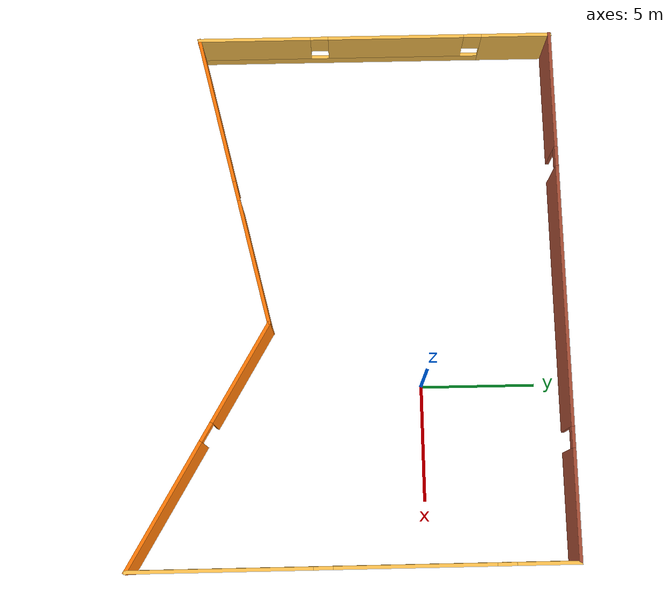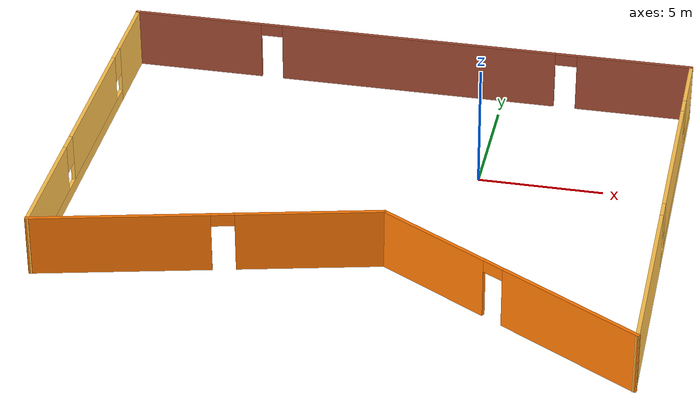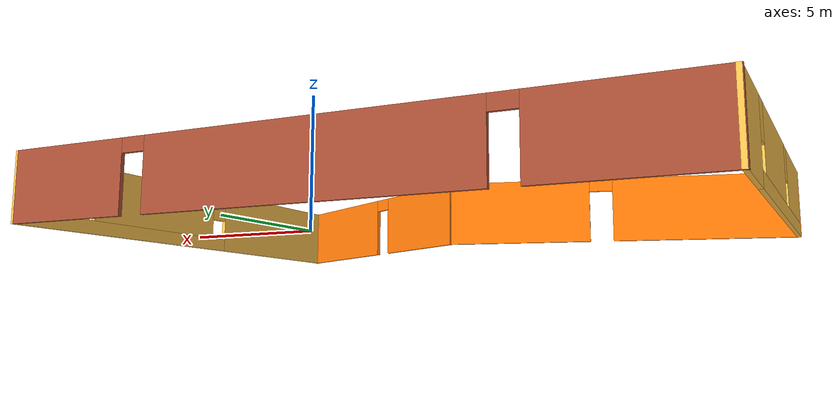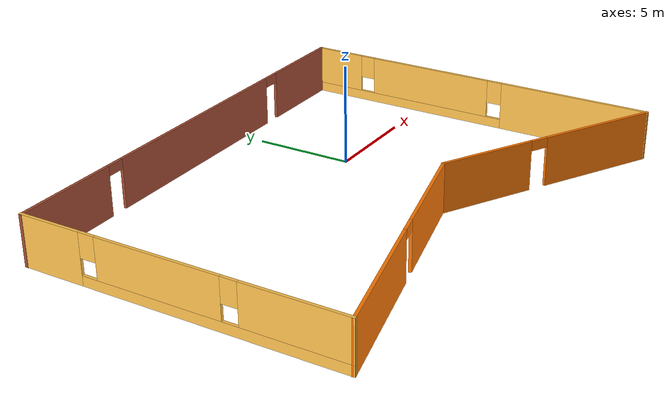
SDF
<?xml version='1.0'?>
<sdf version='1.6'>
  <model name='area98'>
    <pose frame=''>-3.93153 -3.16801 0 0 -0 0</pose>
    <link name='Wall_10'>
      <pose frame=''>11.6613 0.003272 0 0 -0 1.57265</pose>
      <visual name='Wall_10_Visual_0'>
        <pose frame=''>-5.5195 0 1.25 0 -0 0</pose>
        <geometry>
          <box>
            <size>7.78929 0.15 2.5</size>
          </box>
        </geometry>
        <material>
          <script>
            <uri>file://media/materials/scripts/gazebo.material</uri>
            <name>Gazebo/Grey</name>
          </script>
          <ambient>1 0.764706 0.305882 1</ambient>
        </material>
        <meta>
          <layer>0</layer>
        </meta>
      </visual>
      <collision name='Wall_10_Collision_0'>
        <geometry>
          <box>
            <size>7.78929 0.15 2.5</size>
          </box>
        </geometry>
        <pose frame=''>-5.5195 0 1.25 0 -0 0</pose>
      </collision>
      <visual name='Wall_10_Visual_1'>
        <pose frame=''>3.89465 0 0.25 0 -0 0</pose>
        <geometry>
          <box>
            <size>11.039 0.15 0.5</size>
          </box>
        </geometry>
        <material>
          <script>
            <uri>file://media/materials/scripts/gazebo.material</uri>
            <name>Gazebo/Grey</name>
          </script>
          <ambient>1 0.764706 0.305882 1</ambient>
        </material>
        <meta>
          <layer>0</layer>
        </meta>
      </visual>
      <collision name='Wall_10_Collision_1'>
        <geometry>
          <box>
            <size>11.039 0.15 0.5</size>
          </box>
        </geometry>
        <pose frame=''>3.89465 0 0.25 0 -0 0</pose>
      </collision>
      <visual name='Wall_10_Visual_2'>
        <pose frame=''>2.54713 0 1.5 0 -0 0</pose>
        <geometry>
          <box>
            <size>6.74398 0.15 2</size>
          </box>
        </geometry>
        <material>
          <script>
            <uri>file://media/materials/scripts/gazebo.material</uri>
            <name>Gazebo/Grey</name>
          </script>
          <ambient>1 0.764706 0.305882 1</ambient>
        </material>
        <meta>
          <layer>0</layer>
        </meta>
      </visual>
      <collision name='Wall_10_Collision_2'>
        <geometry>
          <box>
            <size>6.74398 0.15 2</size>
          </box>
        </geometry>
        <pose frame=''>2.54713 0 1.5 0 -0 0</pose>
      </collision>
      <visual name='Wall_10_Visual_3'>
        <pose frame=''>8.06663 0 1.5 0 -0 0</pose>
        <geometry>
          <box>
            <size>2.69503 0.15 2</size>
          </box>
        </geometry>
        <material>
          <script>
            <uri>file://media/materials/scripts/gazebo.material</uri>
            <name>Gazebo/Grey</name>
          </script>
          <ambient>1 0.764706 0.305882 1</ambient>
        </material>
        <meta>
          <layer>0</layer>
        </meta>
      </visual>
      <collision name='Wall_10_Collision_3'>
        <geometry>
          <box>
            <size>2.69503 0.15 2</size>
          </box>
        </geometry>
        <pose frame=''>8.06663 0 1.5 0 -0 0</pose>
      </collision>
      <visual name='Wall_10_Visual_4'>
        <pose frame=''>-1.22486 0 1.9 0 -0 0</pose>
        <geometry>
          <box>
            <size>0.8 0.15 1.2</size>
          </box>
        </geometry>
        <material>
          <script>
            <uri>file://media/materials/scripts/gazebo.material</uri>
            <name>Gazebo/Grey</name>
          </script>
          <ambient>1 0.764706 0.305882 1</ambient>
        </material>
        <meta>
          <layer>0</layer>
        </meta>
      </visual>
      <collision name='Wall_10_Collision_4'>
        <geometry>
          <box>
            <size>0.8 0.15 1.2</size>
          </box>
        </geometry>
        <pose frame=''>-1.22486 0 1.9 0 -0 0</pose>
      </collision>
      <visual name='Wall_10_Visual_5'>
        <pose frame=''>6.31912 0 1.9 0 -0 0</pose>
        <geometry>
          <box>
            <size>0.8 0.15 1.2</size>
          </box>
        </geometry>
        <material>
          <script>
            <uri>file://media/materials/scripts/gazebo.material</uri>
            <name>Gazebo/Grey</name>
          </script>
          <ambient>1 0.764706 0.305882 1</ambient>
        </material>
        <meta>
          <layer>0</layer>
        </meta>
      </visual>
      <collision name='Wall_10_Collision_5'>
        <geometry>
          <box>
            <size>0.8 0.15 1.2</size>
          </box>
        </geometry>
        <pose frame=''>6.31912 0 1.9 0 -0 0</pose>
      </collision>
    </link>
    <link name='Wall_11'>
      <pose frame=''>-0.031073 9.34241 0 0 -0 3.14159</pose>
      <visual name='Wall_11_Visual_0'>
        <pose frame=''>-9.37286 0 1.25 0 -0 0</pose>
        <geometry>
          <box>
            <size>4.75428 0.15 2.5</size>
          </box>
        </geometry>
        <material>
          <script>
            <uri>file://media/materials/scripts/gazebo.material</uri>
            <name>Gazebo/Bricks</name>
          </script>
          <ambient>1 0.764706 0.305882 1</ambient>
        </material>
        <meta>
          <layer>0</layer>
        </meta>
      </visual>
      <collision name='Wall_11_Collision_0'>
        <geometry>
          <box>
            <size>4.75428 0.15 2.5</size>
          </box>
        </geometry>
        <pose frame=''>-9.37286 0 1.25 0 -0 0</pose>
      </collision>
      <visual name='Wall_11_Visual_1'>
        <pose frame=''>-0.340549 0 1.25 0 -0 0</pose>
        <geometry>
          <box>
            <size>11.5103 0.15 2.5</size>
          </box>
        </geometry>
        <material>
          <script>
            <uri>file://media/materials/scripts/gazebo.material</uri>
            <name>Gazebo/Bricks</name>
          </script>
          <ambient>1 0.764706 0.305882 1</ambient>
        </material>
        <meta>
          <layer>0</layer>
        </meta>
      </visual>
      <collision name='Wall_11_Collision_1'>
        <geometry>
          <box>
            <size>11.5103 0.15 2.5</size>
          </box>
        </geometry>
        <pose frame=''>-0.340549 0 1.25 0 -0 0</pose>
      </collision>
      <visual name='Wall_11_Visual_2'>
        <pose frame=''>9.03231 0 1.25 0 -0 0</pose>
        <geometry>
          <box>
            <size>5.43538 0.15 2.5</size>
          </box>
        </geometry>
        <material>
          <script>
            <uri>file://media/materials/scripts/gazebo.material</uri>
            <name>Gazebo/Bricks</name>
          </script>
          <ambient>1 0.764706 0.305882 1</ambient>
        </material>
        <meta>
          <layer>0</layer>
        </meta>
      </visual>
      <collision name='Wall_11_Collision_2'>
        <geometry>
          <box>
            <size>5.43538 0.15 2.5</size>
          </box>
        </geometry>
        <pose frame=''>9.03231 0 1.25 0 -0 0</pose>
      </collision>
      <visual name='Wall_11_Visual_3'>
        <pose frame=''>-6.54572 0 2.25 0 -0 0</pose>
        <geometry>
          <box>
            <size>0.9 0.15 0.5</size>
          </box>
        </geometry>
        <material>
          <script>
            <uri>file://media/materials/scripts/gazebo.material</uri>
            <name>Gazebo/Bricks</name>
          </script>
          <ambient>1 0.764706 0.305882 1</ambient>
        </material>
        <meta>
          <layer>0</layer>
        </meta>
      </visual>
      <collision name='Wall_11_Collision_3'>
        <geometry>
          <box>
            <size>0.9 0.15 0.5</size>
          </box>
        </geometry>
        <pose frame=''>-6.54572 0 2.25 0 -0 0</pose>
      </collision>
      <visual name='Wall_11_Visual_4'>
        <pose frame=''>5.86462 0 2.25 0 -0 0</pose>
        <geometry>
          <box>
            <size>0.9 0.15 0.5</size>
          </box>
        </geometry>
        <material>
          <script>
            <uri>file://media/materials/scripts/gazebo.material</uri>
            <name>Gazebo/Bricks</name>
          </script>
          <ambient>1 0.764706 0.305882 1</ambient>
        </material>
        <meta>
          <layer>0</layer>
        </meta>
      </visual>
      <collision name='Wall_11_Collision_4'>
        <geometry>
          <box>
            <size>0.9 0.15 0.5</size>
          </box>
        </geometry>
        <pose frame=''>5.86462 0 2.25 0 -0 0</pose>
      </collision>
    </link>
    <link name='Wall_7'>
      <pose frame=''>-11.6837 1.43831 0 0 0 -1.5708</pose>
      <visual name='Wall_7_Visual_0'>
        <pose frame=''>-6.41371 0 1.25 0 -0 0</pose>
        <geometry>
          <box>
            <size>3.17258 0.15 2.5</size>
          </box>
        </geometry>
        <material>
          <script>
            <uri>file://media/materials/scripts/gazebo.material</uri>
            <name>Gazebo/Grey</name>
          </script>
          <ambient>1 0.764706 0.305882 1</ambient>
        </material>
        <meta>
          <layer>0</layer>
        </meta>
      </visual>
      <collision name='Wall_7_Collision_0'>
        <geometry>
          <box>
            <size>3.17258 0.15 2.5</size>
          </box>
        </geometry>
        <pose frame=''>-6.41371 0 1.25 0 -0 0</pose>
      </collision>
      <visual name='Wall_7_Visual_1'>
        <pose frame=''>1.58629 0 0.25 0 -0 0</pose>
        <geometry>
          <box>
            <size>12.8274 0.15 0.5</size>
          </box>
        </geometry>
        <material>
          <script>
            <uri>file://media/materials/scripts/gazebo.material</uri>
            <name>Gazebo/Grey</name>
          </script>
          <ambient>1 0.764706 0.305882 1</ambient>
        </material>
        <meta>
          <layer>0</layer>
        </meta>
      </visual>
      <collision name='Wall_7_Collision_1'>
        <geometry>
          <box>
            <size>12.8274 0.15 0.5</size>
          </box>
        </geometry>
        <pose frame=''>1.58629 0 0.25 0 -0 0</pose>
      </collision>
      <visual name='Wall_7_Visual_2'>
        <pose frame=''>-0.959825 0 1.5 0 -0 0</pose>
        <geometry>
          <box>
            <size>6.13519 0.15 2</size>
          </box>
        </geometry>
        <material>
          <script>
            <uri>file://media/materials/scripts/gazebo.material</uri>
            <name>Gazebo/Grey</name>
          </script>
          <ambient>1 0.764706 0.305882 1</ambient>
        </material>
        <meta>
          <layer>0</layer>
        </meta>
      </visual>
      <collision name='Wall_7_Collision_2'>
        <geometry>
          <box>
            <size>6.13519 0.15 2</size>
          </box>
        </geometry>
        <pose frame=''>-0.959825 0 1.5 0 -0 0</pose>
      </collision>
      <visual name='Wall_7_Visual_3'>
        <pose frame=''>5.45388 0 1.5 0 -0 0</pose>
        <geometry>
          <box>
            <size>5.09223 0.15 2</size>
          </box>
        </geometry>
        <material>
          <script>
            <uri>file://media/materials/scripts/gazebo.material</uri>
            <name>Gazebo/Grey</name>
          </script>
          <ambient>1 0.764706 0.305882 1</ambient>
        </material>
        <meta>
          <layer>0</layer>
        </meta>
      </visual>
      <collision name='Wall_7_Collision_3'>
        <geometry>
          <box>
            <size>5.09223 0.15 2</size>
          </box>
        </geometry>
        <pose frame=''>5.45388 0 1.5 0 -0 0</pose>
      </collision>
      <visual name='Wall_7_Visual_4'>
        <pose frame=''>-4.42742 0 1.9 0 -0 0</pose>
        <geometry>
          <box>
            <size>0.8 0.15 1.2</size>
          </box>
        </geometry>
        <material>
          <script>
            <uri>file://media/materials/scripts/gazebo.material</uri>
            <name>Gazebo/Grey</name>
          </script>
          <ambient>1 0.764706 0.305882 1</ambient>
        </material>
        <meta>
          <layer>0</layer>
        </meta>
      </visual>
      <collision name='Wall_7_Collision_4'>
        <geometry>
          <box>
            <size>0.8 0.15 1.2</size>
          </box>
        </geometry>
        <pose frame=''>-4.42742 0 1.9 0 -0 0</pose>
      </collision>
      <visual name='Wall_7_Visual_5'>
        <pose frame=''>2.50777 0 1.9 0 -0 0</pose>
        <geometry>
          <box>
            <size>0.8 0.15 1.2</size>
          </box>
        </geometry>
        <material>
          <script>
            <uri>file://media/materials/scripts/gazebo.material</uri>
            <name>Gazebo/Grey</name>
          </script>
          <ambient>1 0.764706 0.305882 1</ambient>
        </material>
        <meta>
          <layer>0</layer>
        </meta>
      </visual>
      <collision name='Wall_7_Collision_5'>
        <geometry>
          <box>
            <size>0.8 0.15 1.2</size>
          </box>
        </geometry>
        <pose frame=''>2.50777 0 1.9 0 -0 0</pose>
      </collision>
    </link>
    <link name='Wall_8'>
      <pose frame=''>-5.15395 -4.94877 0 0 -0 0.231309</pose>
      <visual name='Wall_8_Visual_0'>
        <pose frame=''>-3.3009 0 1.25 0 -0 0</pose>
        <geometry>
          <box>
            <size>6.96496 0.15 2.5</size>
          </box>
        </geometry>
        <material>
          <script>
            <uri>file://media/materials/scripts/gazebo.material</uri>
            <name>Gazebo/Grey</name>
          </script>
          <ambient>0.996078 0.47451 0.0196078 1</ambient>
        </material>
        <meta>
          <layer>0</layer>
        </meta>
      </visual>
      <collision name='Wall_8_Collision_0'>
        <geometry>
          <box>
            <size>6.96496 0.15 2.5</size>
          </box>
        </geometry>
        <pose frame=''>-3.3009 0 1.25 0 -0 0</pose>
      </collision>
      <visual name='Wall_8_Visual_1'>
        <pose frame=''>3.93248 0 1.25 0 -0 0</pose>
        <geometry>
          <box>
            <size>5.70181 0.15 2.5</size>
          </box>
        </geometry>
        <material>
          <script>
            <uri>file://media/materials/scripts/gazebo.material</uri>
            <name>Gazebo/Grey</name>
          </script>
          <ambient>0.996078 0.47451 0.0196078 1</ambient>
        </material>
        <meta>
          <layer>0</layer>
        </meta>
      </visual>
      <collision name='Wall_8_Collision_1'>
        <geometry>
          <box>
            <size>5.70181 0.15 2.5</size>
          </box>
        </geometry>
        <pose frame=''>3.93248 0 1.25 0 -0 0</pose>
      </collision>
      <visual name='Wall_8_Visual_2'>
        <pose frame=''>0.631573 0 2.25 0 -0 0</pose>
        <geometry>
          <box>
            <size>0.9 0.15 0.5</size>
          </box>
        </geometry>
        <material>
          <script>
            <uri>file://media/materials/scripts/gazebo.material</uri>
            <name>Gazebo/Grey</name>
          </script>
          <ambient>0.996078 0.47451 0.0196078 1</ambient>
        </material>
        <meta>
          <layer>0</layer>
        </meta>
      </visual>
      <collision name='Wall_8_Collision_2'>
        <geometry>
          <box>
            <size>0.9 0.15 0.5</size>
          </box>
        </geometry>
        <pose frame=''>0.631573 0 2.25 0 -0 0</pose>
      </collision>
    </link>
    <link name='Wall_9'>
      <pose frame=''>6.54742 -6.37336 0 0 0 -0.523599</pose>
      <visual name='Wall_9_Visual_0'>
        <pose frame=''>-3.53843 0 1.25 0 -0 0</pose>
        <geometry>
          <box>
            <size>4.92314 0.15 2.5</size>
          </box>
        </geometry>
        <material>
          <script>
            <uri>file://media/materials/scripts/gazebo.material</uri>
            <name>Gazebo/Grey</name>
          </script>
          <ambient>0.996078 0.47451 0.0196078 1</ambient>
        </material>
        <meta>
          <layer>0</layer>
        </meta>
      </visual>
      <collision name='Wall_9_Collision_0'>
        <geometry>
          <box>
            <size>4.92314 0.15 2.5</size>
          </box>
        </geometry>
        <pose frame=''>-3.53843 0 1.25 0 -0 0</pose>
      </collision>
      <visual name='Wall_9_Visual_1'>
        <pose frame=''>2.91157 0 1.25 0 -0 0</pose>
        <geometry>
          <box>
            <size>6.17686 0.15 2.5</size>
          </box>
        </geometry>
        <material>
          <script>
            <uri>file://media/materials/scripts/gazebo.material</uri>
            <name>Gazebo/Grey</name>
          </script>
          <ambient>0.996078 0.47451 0.0196078 1</ambient>
        </material>
        <meta>
          <layer>0</layer>
        </meta>
      </visual>
      <collision name='Wall_9_Collision_1'>
        <geometry>
          <box>
            <size>6.17686 0.15 2.5</size>
          </box>
        </geometry>
        <pose frame=''>2.91157 0 1.25 0 -0 0</pose>
      </collision>
      <visual name='Wall_9_Visual_2'>
        <pose frame=''>-0.626862 0 2.25 0 -0 0</pose>
        <geometry>
          <box>
            <size>0.9 0.15 0.5</size>
          </box>
        </geometry>
        <material>
          <script>
            <uri>file://media/materials/scripts/gazebo.material</uri>
            <name>Gazebo/Grey</name>
          </script>
          <ambient>0.996078 0.47451 0.0196078 1</ambient>
        </material>
        <meta>
          <layer>0</layer>
        </meta>
      </visual>
      <collision name='Wall_9_Collision_2'>
        <geometry>
          <box>
            <size>0.9 0.15 0.5</size>
          </box>
        </geometry>
        <pose frame=''>-0.626862 0 2.25 0 -0 0</pose>
      </collision>
    </link>
    <static>1</static>
  </model>
</sdf>
